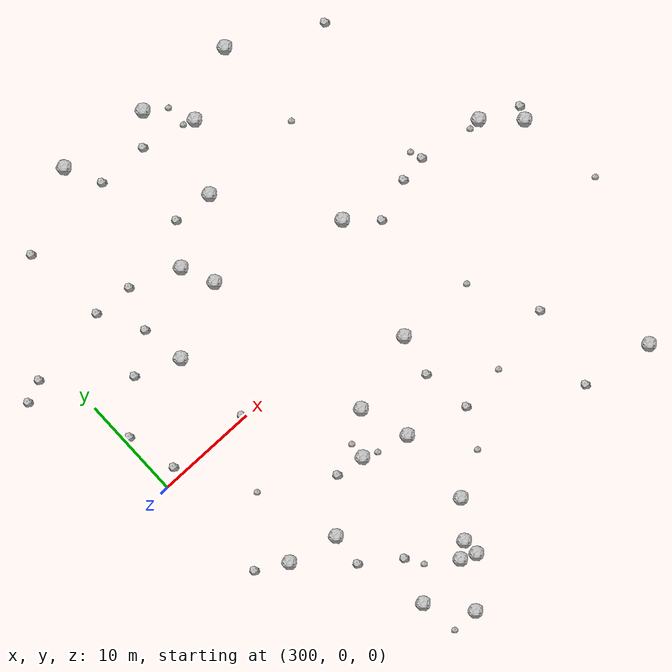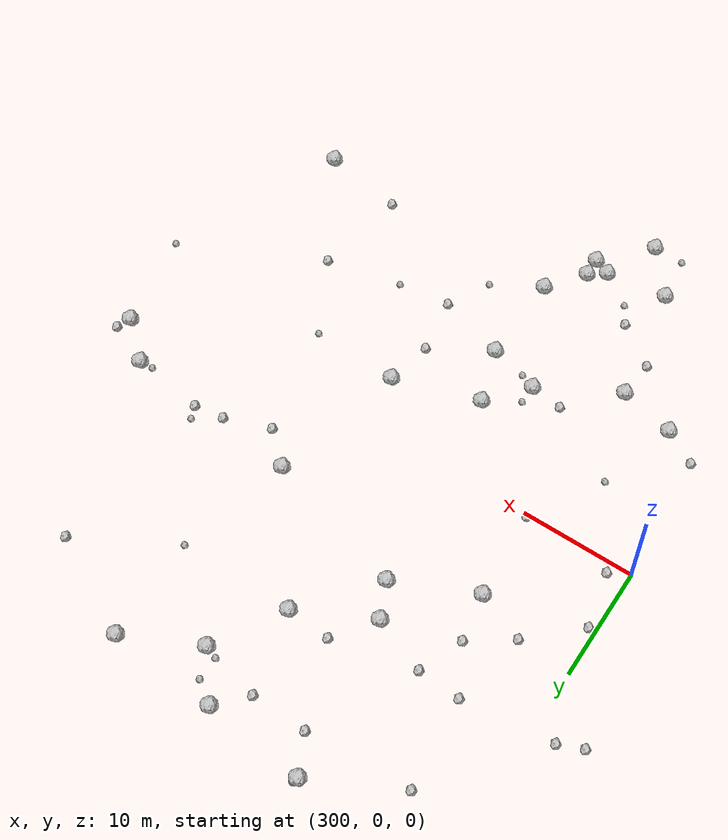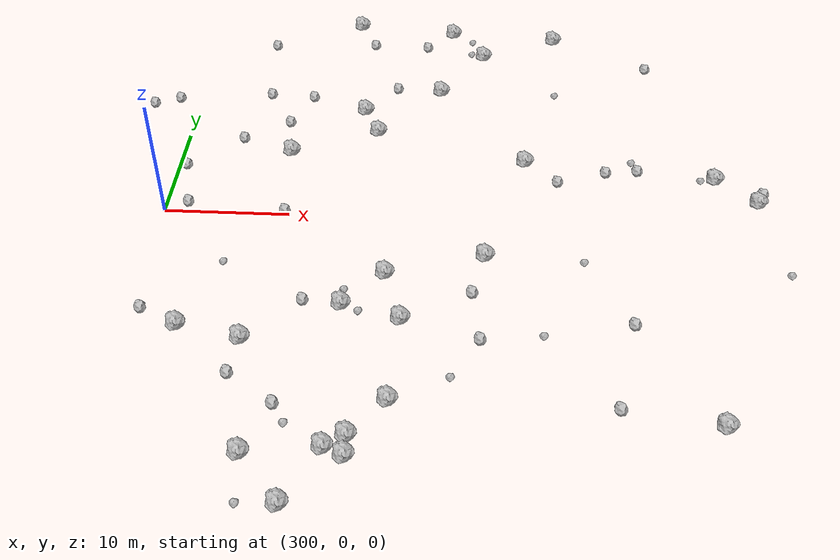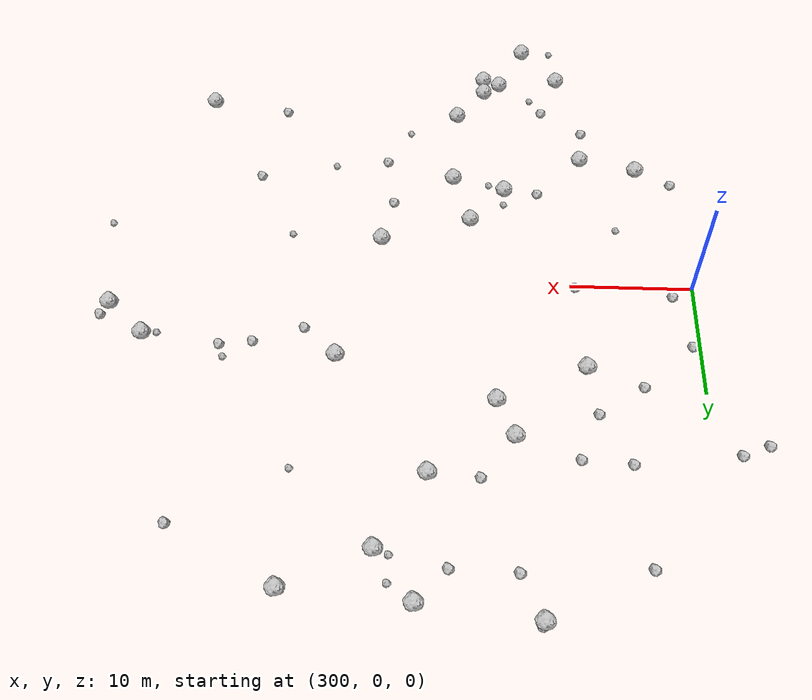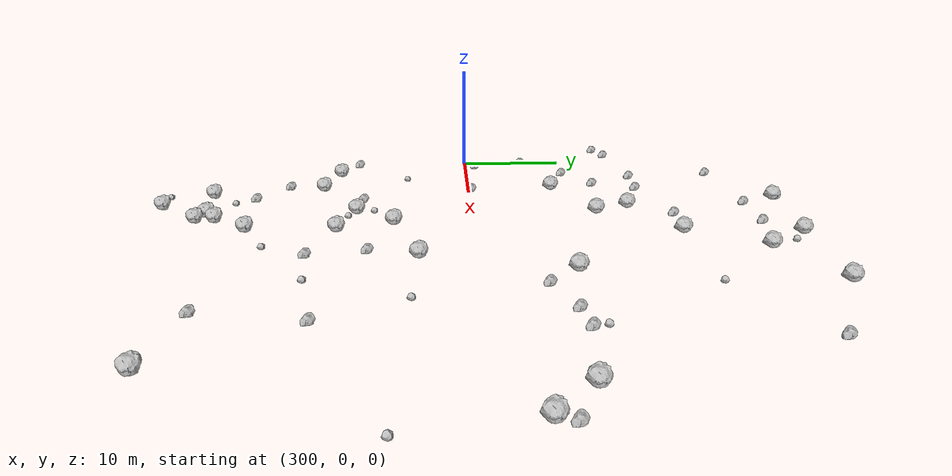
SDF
<sdf version="1.6">
 <world name="default">
  <include><uri>model://sun</uri></include>
  <model name="rock1_8_3">
   <include><uri>model://rock1</uri><pose>325.03535665563754 23.476955641179472 0.5 0 0 0</pose></include>
  </model>
  <model name="rock1_8_4">
   <include><uri>model://rock1</uri><pose>342.0292600169885 -20.354428208282055 0.5 0 0 0</pose></include>
  </model>
  <model name="rock1_8_5">
   <include><uri>model://rock1</uri><pose>315.34657347429885 -10.137028660005033 0.5 0 0 0</pose></include>
  </model>
  <model name="rock1_8_6">
   <include><uri>model://rock1</uri><pose>328.85108068883176 7.372520856900721 0.5 0 0 0</pose></include>
  </model>
  <model name="rock1_8_7">
   <include><uri>model://rock1</uri><pose>310.31394746215574 -23.92097538193891 0.5 0 0 0</pose></include>
  </model>
  <model name="rock1_8_8">
   <include><uri>model://rock1</uri><pose>308.5819761275098 -13.870665414171242 0.5 0 0 0</pose></include>
  </model>
  <model name="rock1_8_9">
   <include><uri>model://rock1</uri><pose>321.35560167802635 17.455662408644848 0.5 0 0 0</pose></include>
  </model>
  <model name="rock1_8_10">
   <include><uri>model://rock1</uri><pose>313.0997896982712 28.39353461050481 0.5 0 0 0</pose></include>
  </model>
  <model name="rock1_8_11">
   <include><uri>model://rock1</uri><pose>347.6046149209151 2.8068994922605057 0.5 0 0 0</pose></include>
  </model>
  <model name="rock1_8_12">
   <include><uri>model://rock1</uri><pose>315.64335163757914 -23.233725477257774 0.5 0 0 0</pose></include>
  </model>
  <model name="rock1_8_13">
   <include><uri>model://rock1</uri><pose>322.0597494924417 27.348317434195913 0.5 0 0 0</pose></include>
  </model>
  <model name="rock1_8_14">
   <include><uri>model://rock1</uri><pose>319.79268183345846 -11.44005081347953 0.5 0 0 0</pose></include>
  </model>
  <model name="rock1_8_15">
   <include><uri>model://rock1</uri><pose>313.42190294048174 -27.734417852890004 0.5 0 0 0</pose></include>
  </model>
  <model name="rock1_8_16">
   <include><uri>model://rock1</uri><pose>303.7472535757377 -12.740852838829568 0.5 0 0 0</pose></include>
  </model>
  <model name="rock1_8_17">
   <include><uri>model://rock1</uri><pose>314.8109277625966 14.230570134017803 0.5 0 0 0</pose></include>
  </model>
  <model name="rock1_8_18">
   <include><uri>model://rock1</uri><pose>309.1086385792508 8.02112485599018 0.5 0 0 0</pose></include>
  </model>
  <model name="rock1_8_19">
   <include><uri>model://rock1</uri><pose>317.061555407921 -22.2137677665075 0.5 0 0 0</pose></include>
  </model>
  <model name="rock1_8_20">
   <include><uri>model://rock1</uri><pose>316.2003453075463 11.131228891667426 0.5 0 0 0</pose></include>
  </model>
  <model name="rock1_8_21">
   <include><uri>model://rock1</uri><pose>344.47453493557265 5.699878945854053 0.5 0 0 0</pose></include>
  </model>
  <model name="rock1_8_22">
   <include><uri>model://rock1</uri><pose>319.5143365852853 -19.080442298834555 0.5 0 0 0</pose></include>
  </model>
  <model name="rock1_8_23">
   <include><uri>model://rock1</uri><pose>318.27879212374984 -6.731773248560479 0.5 0 0 0</pose></include>
  </model>
  <model name="rock1_8_24">
   <include><uri>model://rock1</uri><pose>331.6242980811051 26.554985858031174 0.5 0 0 0</pose></include>
  </model>
  <model name="rock1_8_25">
   <include><uri>model://rock1</uri><pose>325.7740667343163 -4.463663434954967 0.5 0 0 0</pose></include>
  </model>
  <model name="rock1_8_26">
   <include><uri>model://rock1</uri><pose>317.0953385525478 -23.858783671636502 0.5 0 0 0</pose></include>
  </model>
  <model name="rock2_8_0">
   <include><uri>model://rock2</uri><pose>314.7050860352666 25.010878910850266 0.3 0 0 0</pose></include>
  </model>
  <model name="rock2_8_1">
   <include><uri>model://rock2</uri><pose>297.9854083669298 15.436660625721444 0.3 0 0 0</pose></include>
  </model>
  <model name="rock2_8_2">
   <include><uri>model://rock2</uri><pose>300.7732755033688 -11.130265304157902 0.3 0 0 0</pose></include>
  </model>
  <model name="rock2_8_3">
   <include><uri>model://rock2</uri><pose>319.70925615222427 24.825044387578423 0.3 0 0 0</pose></include>
  </model>
  <model name="rock2_8_4">
   <include><uri>model://rock2</uri><pose>324.87945511154686 -8.473935011661268 0.3 0 0 0</pose></include>
  </model>
  <model name="rock2_8_5">
   <include><uri>model://rock2</uri><pose>312.4649819976001 -9.78241210695483 0.3 0 0 0</pose></include>
  </model>
  <model name="rock2_8_6">
   <include><uri>model://rock2</uri><pose>335.12390912669343 -19.16802542569399 0.3 0 0 0</pose></include>
  </model>
  <model name="rock2_8_7">
   <include><uri>model://rock2</uri><pose>301.7516501774451 1.02448646932433 0.3 0 0 0</pose></include>
  </model>
  <model name="rock2_8_8">
   <include><uri>model://rock2</uri><pose>295.85014632908496 14.579286322258184 0.3 0 0 0</pose></include>
  </model>
  <model name="rock2_8_9">
   <include><uri>model://rock2</uri><pose>305.3321506843548 24.5122052195953 0.3 0 0 0</pose></include>
  </model>
  <model name="rock2_8_10">
   <include><uri>model://rock2</uri><pose>308.4015269690385 12.206620368345867 0.3 0 0 0</pose></include>
  </model>
  <model name="rock2_8_11">
   <include><uri>model://rock2</uri><pose>335.5141264655163 6.271673978670677 0.3 0 0 0</pose></include>
  </model>
  <model name="rock2_8_12">
   <include><uri>model://rock2</uri><pose>331.5056914968417 4.871219691073932 0.3 0 0 0</pose></include>
  </model>
  <model name="rock2_8_13">
   <include><uri>model://rock2</uri><pose>340.005055605706 21.984961121078854 0.3 0 0 0</pose></include>
  </model>
  <model name="rock2_8_14">
   <include><uri>model://rock2</uri><pose>311.8179059968807 -19.687641182522086 0.3 0 0 0</pose></include>
  </model>
  <model name="rock2_8_15">
   <include><uri>model://rock2</uri><pose>309.9671476070495 16.113962469819427 0.3 0 0 0</pose></include>
  </model>
  <model name="rock2_8_16">
   <include><uri>model://rock2</uri><pose>317.41799324288814 17.76260503606394 0.3 0 0 0</pose></include>
  </model>
  <model name="rock2_8_17">
   <include><uri>model://rock2</uri><pose>338.1437927607292 6.614984266450826 0.3 0 0 0</pose></include>
  </model>
  <model name="rock2_8_18">
   <include><uri>model://rock2</uri><pose>325.58695066257707 -13.184973481511687 0.3 0 0 0</pose></include>
  </model>
  <model name="rock2_8_19">
   <include><uri>model://rock2</uri><pose>306.1207097048335 16.38998925985794 0.3 0 0 0</pose></include>
  </model>
  <model name="rock2_8_20">
   <include><uri>model://rock2</uri><pose>309.6588242144344 0.281726996516511 0.3 0 0 0</pose></include>
  </model>
  <model name="rock2_8_21">
   <include><uri>model://rock2</uri><pose>300.6096133600273 5.852638851453804 0.3 0 0 0</pose></include>
  </model>
  <model name="rock2_8_22">
   <include><uri>model://rock2</uri><pose>308.2720643419275 -17.12819179634436 0.3 0 0 0</pose></include>
  </model>
  <model name="rock2_8_23">
   <include><uri>model://rock2</uri><pose>313.2547432958572 28.685622627570652 0.3 0 0 0</pose></include>
  </model>
  <model name="rock2_8_24">
   <include><uri>model://rock2</uri><pose>336.6601550938075 -11.24345563888475 0.3 0 0 0</pose></include>
  </model>
  <model name="rock2_8_25">
   <include><uri>model://rock2</uri><pose>348.11992965585176 4.0184859986523165 0.3 0 0 0</pose></include>
  </model>
  <model name="rock2_8_26">
   <include><uri>model://rock2</uri><pose>304.77361409223505 9.717090909743483 0.3 0 0 0</pose></include>
  </model>
  <model name="rock3_8_0">
   <include><uri>model://rock3</uri><pose>323.8869483329486 23.851365891454577 0.2 0 0 0</pose></include>
  </model>
  <model name="rock3_8_1">
   <include><uri>model://rock3</uri><pose>348.79999889753134 -5.587761703049939 0.2 0 0 0</pose></include>
  </model>
  <model name="rock3_8_2">
   <include><uri>model://rock3</uri><pose>323.9201110883316 25.933922292684834 0.2 0 0 0</pose></include>
  </model>
  <model name="rock3_8_3">
   <include><uri>model://rock3</uri><pose>330.1113616261969 -12.692875280751405 0.2 0 0 0</pose></include>
  </model>
  <model name="rock3_8_4">
   <include><uri>model://rock3</uri><pose>305.86210215450956 -5.949186811510984 0.2 0 0 0</pose></include>
  </model>
  <model name="rock3_8_5">
   <include><uri>model://rock3</uri><pose>310.73374892342355 -27.805331091877637 0.2 0 0 0</pose></include>
  </model>
  <model name="rock3_8_6">
   <include><uri>model://rock3</uri><pose>333.29846518240095 -4.837912479674053 0.2 0 0 0</pose></include>
  </model>
  <model name="rock3_8_7">
   <include><uri>model://rock3</uri><pose>337.7153434703603 7.706144517626377 0.2 0 0 0</pose></include>
  </model>
  <model name="rock3_8_8">
   <include><uri>model://rock3</uri><pose>315.3634390052142 -8.597999433192726 0.2 0 0 0</pose></include>
  </model>
  <model name="rock3_8_9">
   <include><uri>model://rock3</uri><pose>331.51834317002664 17.317499617979045 0.2 0 0 0</pose></include>
  </model>
  <model name="rock3_8_10">
   <include><uri>model://rock3</uri><pose>316.64095230957855 -10.77460239099213 0.2 0 0 0</pose></include>
  </model>
  <model name="rock3_8_11">
   <include><uri>model://rock3</uri><pose>323.62648591036253 -16.873655377988626 0.2 0 0 0</pose></include>
  </model>
  <model name="rock3_8_12">
   <include><uri>model://rock3</uri><pose>343.26413901041093 5.5645155951150045 0.2 0 0 0</pose></include>
  </model>
  <model name="rock3_8_13">
   <include><uri>model://rock3</uri><pose>312.7878699474069 -21.352928859735314 0.2 0 0 0</pose></include>
  </model>
 </world>
</sdf>
